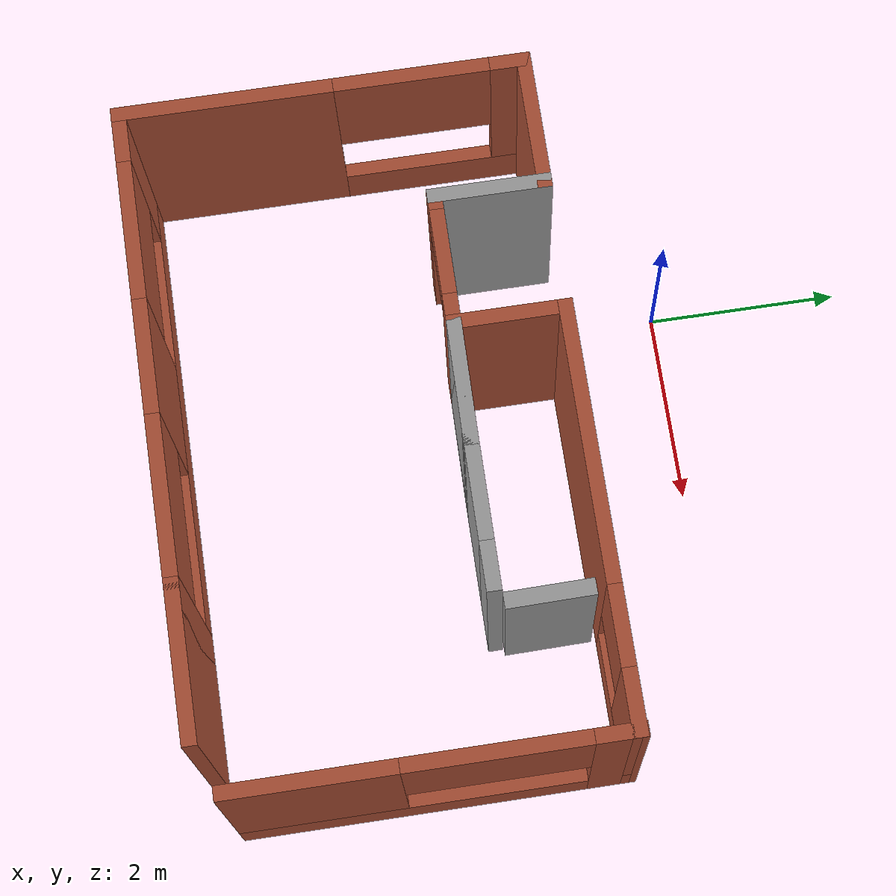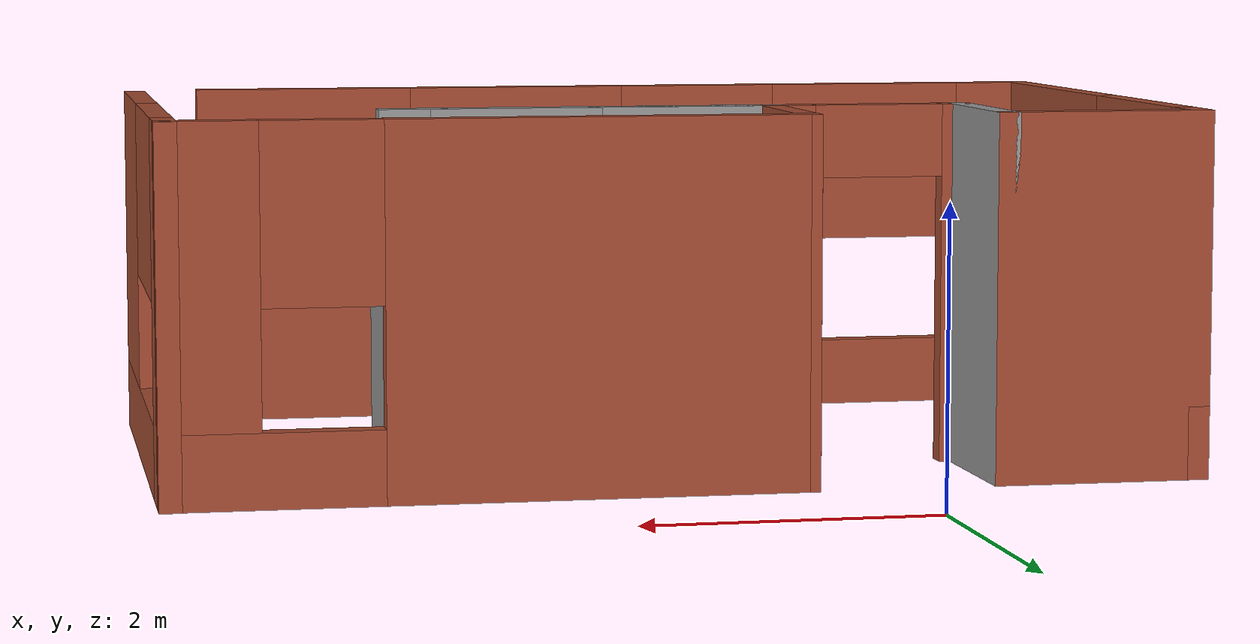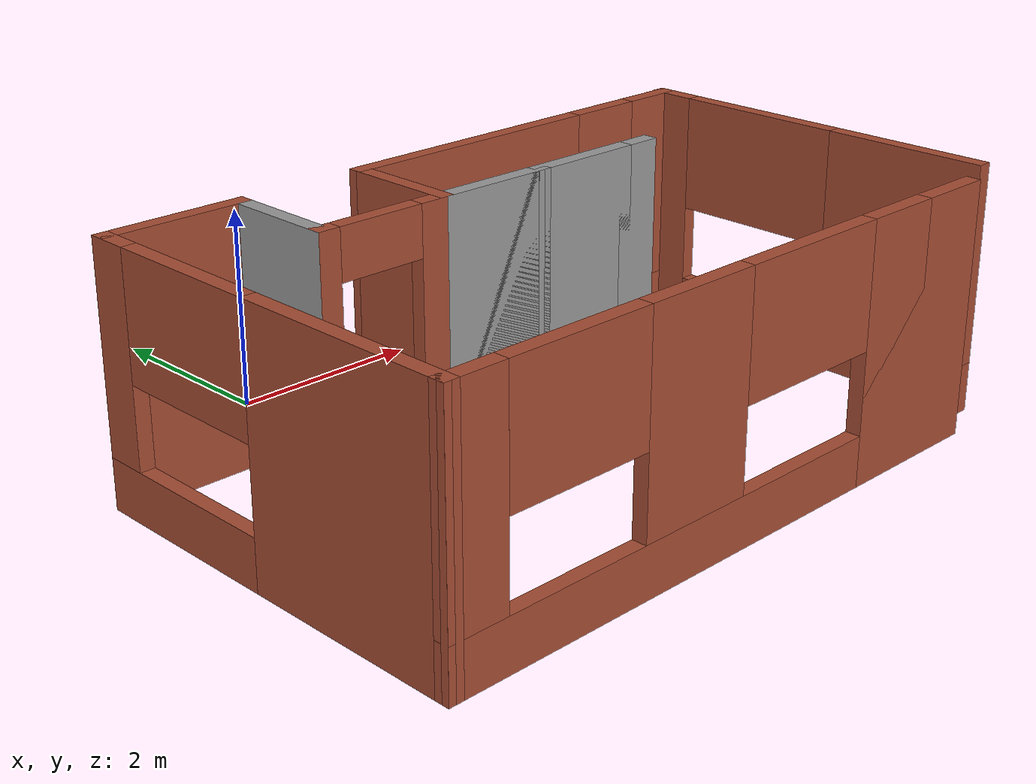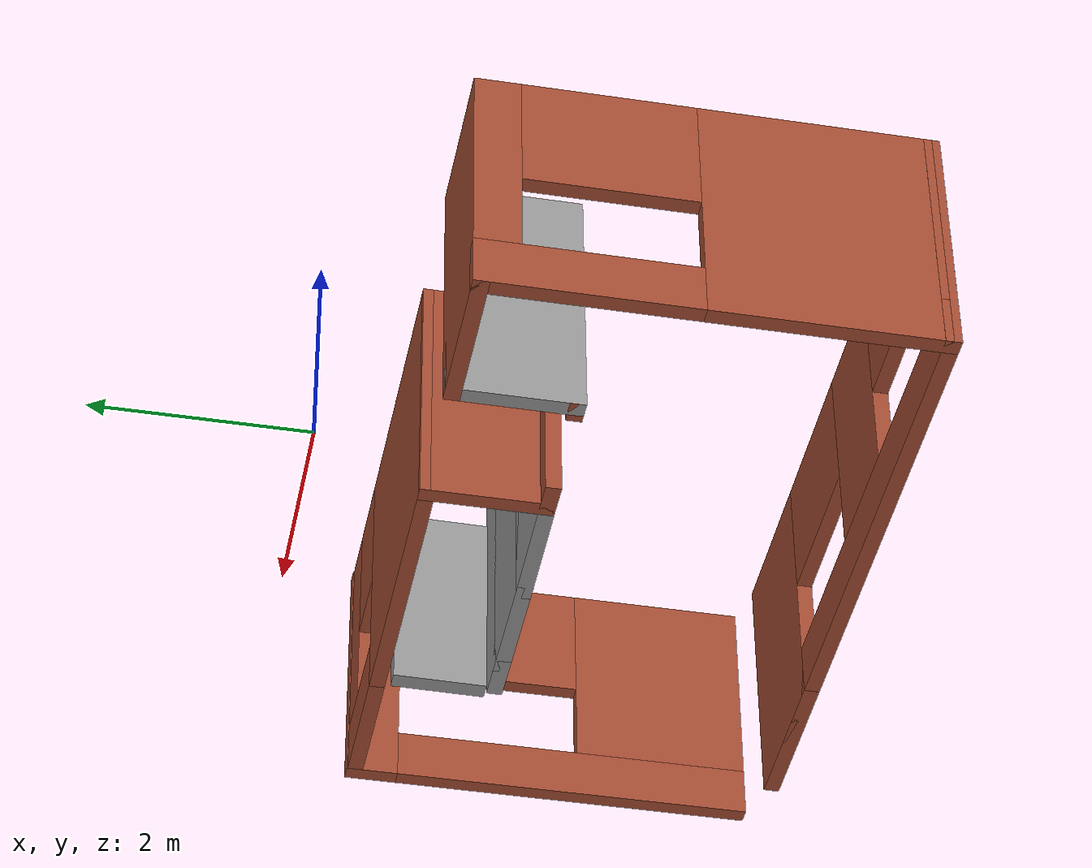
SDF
<?xml version='1.0'?>
<sdf version='1.6'>
  <model name='myBuilding'>
    <pose frame=''>1.38994 -3.15018 0 0 -0 0</pose>
    <link name='Door_2'>
      <collision name='Door_2_Collision'>
        <geometry>
          <box>
            <size>0.9 0.17 2</size>
          </box>
        </geometry>
        <pose frame=''>0 0 1 0 -0 0</pose>
      </collision>
      <visual name='Door_2_Visual'>
        <pose frame=''>0 0 1 0 -0 0</pose>
        <geometry>
          <box>
            <size>0.9 0.17 2</size>
          </box>
        </geometry>
        <material>
          <script>
            <uri>file://media/materials/scripts/gazebo.material</uri>
            <name>Gazebo/Grey</name>
          </script>
        </material>
      </visual>
      <pose frame=''>1.94006 1.47018 0 0 0 -1.5578</pose>
    </link>
    <link name='Wall_11'>
      <pose frame=''>-0.269936 -2.04482 0 0 0 -3.13688</pose>
      <visual name='Wall_11_Visual_0'>
        <pose frame=''>-2.45084 0 1.25 0 -0 0</pose>
        <geometry>
          <box>
            <size>1.6084 0.15 2.5</size>
          </box>
        </geometry>
        <material>
          <script>
            <uri>file://media/materials/scripts/gazebo.material</uri>
            <name>Gazebo/Bricks</name>
          </script>
          <ambient>1 1 1 1</ambient>
        </material>
        <meta>
          <layer>0</layer>
        </meta>
      </visual>
      <collision name='Wall_11_Collision_0'>
        <geometry>
          <box>
            <size>1.6084 0.15 2.5</size>
          </box>
        </geometry>
        <pose frame=''>-2.45084 0 1.25 0 -0 0</pose>
      </collision>
      <visual name='Wall_11_Visual_1'>
        <pose frame=''>-2.06079 0 1.25 0 -0 0</pose>
        <geometry>
          <box>
            <size>0.828302 0.15 2.5</size>
          </box>
        </geometry>
        <material>
          <script>
            <uri>file://media/materials/scripts/gazebo.material</uri>
            <name>Gazebo/Bricks</name>
          </script>
          <ambient>1 1 1 1</ambient>
        </material>
        <meta>
          <layer>0</layer>
        </meta>
      </visual>
      <collision name='Wall_11_Collision_1'>
        <geometry>
          <box>
            <size>0.828302 0.15 2.5</size>
          </box>
        </geometry>
        <pose frame=''>-2.06079 0 1.25 0 -0 0</pose>
      </collision>
      <visual name='Wall_11_Visual_2'>
        <pose frame=''>0.804199 0 0.25 0 -0 0</pose>
        <geometry>
          <box>
            <size>4.90167 0.15 0.5</size>
          </box>
        </geometry>
        <material>
          <script>
            <uri>file://media/materials/scripts/gazebo.material</uri>
            <name>Gazebo/Bricks</name>
          </script>
          <ambient>1 1 1 1</ambient>
        </material>
        <meta>
          <layer>0</layer>
        </meta>
      </visual>
      <collision name='Wall_11_Collision_2'>
        <geometry>
          <box>
            <size>4.90167 0.15 0.5</size>
          </box>
        </geometry>
        <pose frame=''>0.804199 0 0.25 0 -0 0</pose>
      </collision>
      <visual name='Wall_11_Visual_3'>
        <pose frame=''>0.804199 0 0.25 0 -0 0</pose>
        <geometry>
          <box>
            <size>4.90167 0.15 0.5</size>
          </box>
        </geometry>
        <material>
          <script>
            <uri>file://media/materials/scripts/gazebo.material</uri>
            <name>Gazebo/Bricks</name>
          </script>
          <ambient>1 1 1 1</ambient>
        </material>
        <meta>
          <layer>0</layer>
        </meta>
      </visual>
      <collision name='Wall_11_Collision_3'>
        <geometry>
          <box>
            <size>4.90167 0.15 0.5</size>
          </box>
        </geometry>
        <pose frame=''>0.804199 0 0.25 0 -0 0</pose>
      </collision>
      <visual name='Wall_11_Visual_4'>
        <pose frame=''>0.57927 0 1.5 0 -0 0</pose>
        <geometry>
          <box>
            <size>1.1925 0.15 2</size>
          </box>
        </geometry>
        <material>
          <script>
            <uri>file://media/materials/scripts/gazebo.material</uri>
            <name>Gazebo/Bricks</name>
          </script>
          <ambient>1 1 1 1</ambient>
        </material>
        <meta>
          <layer>0</layer>
        </meta>
      </visual>
      <collision name='Wall_11_Collision_4'>
        <geometry>
          <box>
            <size>1.1925 0.15 2</size>
          </box>
        </geometry>
        <pose frame=''>0.57927 0 1.5 0 -0 0</pose>
      </collision>
      <visual name='Wall_11_Visual_5'>
        <pose frame=''>2.95514 0 1.5 0 -0 0</pose>
        <geometry>
          <box>
            <size>0.599795 0.15 2</size>
          </box>
        </geometry>
        <material>
          <script>
            <uri>file://media/materials/scripts/gazebo.material</uri>
            <name>Gazebo/Bricks</name>
          </script>
          <ambient>1 1 1 1</ambient>
        </material>
        <meta>
          <layer>0</layer>
        </meta>
      </visual>
      <collision name='Wall_11_Collision_5'>
        <geometry>
          <box>
            <size>0.599795 0.15 2</size>
          </box>
        </geometry>
        <pose frame=''>2.95514 0 1.5 0 -0 0</pose>
      </collision>
      <visual name='Wall_11_Visual_6'>
        <pose frame=''>0.57927 0 1.5 0 -0 0</pose>
        <geometry>
          <box>
            <size>1.1925 0.15 2</size>
          </box>
        </geometry>
        <material>
          <script>
            <uri>file://media/materials/scripts/gazebo.material</uri>
            <name>Gazebo/Bricks</name>
          </script>
          <ambient>1 1 1 1</ambient>
        </material>
        <meta>
          <layer>0</layer>
        </meta>
      </visual>
      <collision name='Wall_11_Collision_6'>
        <geometry>
          <box>
            <size>1.1925 0.15 2</size>
          </box>
        </geometry>
        <pose frame=''>0.57927 0 1.5 0 -0 0</pose>
      </collision>
      <visual name='Wall_11_Visual_7'>
        <pose frame=''>2.95514 0 1.5 0 -0 0</pose>
        <geometry>
          <box>
            <size>0.599795 0.15 2</size>
          </box>
        </geometry>
        <material>
          <script>
            <uri>file://media/materials/scripts/gazebo.material</uri>
            <name>Gazebo/Bricks</name>
          </script>
          <ambient>1 1 1 1</ambient>
        </material>
        <meta>
          <layer>0</layer>
        </meta>
      </visual>
      <collision name='Wall_11_Collision_7'>
        <geometry>
          <box>
            <size>0.599795 0.15 2</size>
          </box>
        </geometry>
        <pose frame=''>2.95514 0 1.5 0 -0 0</pose>
      </collision>
      <visual name='Wall_11_Visual_8'>
        <pose frame=''>-0.831808 0 1.9 0 -0 0</pose>
        <geometry>
          <box>
            <size>1.62966 0.15 1.2</size>
          </box>
        </geometry>
        <material>
          <script>
            <uri>file://media/materials/scripts/gazebo.material</uri>
            <name>Gazebo/Bricks</name>
          </script>
          <ambient>1 1 1 1</ambient>
        </material>
        <meta>
          <layer>0</layer>
        </meta>
      </visual>
      <collision name='Wall_11_Collision_8'>
        <geometry>
          <box>
            <size>1.62966 0.15 1.2</size>
          </box>
        </geometry>
        <pose frame=''>-0.831808 0 1.9 0 -0 0</pose>
      </collision>
      <visual name='Wall_11_Visual_9'>
        <pose frame=''>-0.831808 0 1.9 0 -0 0</pose>
        <geometry>
          <box>
            <size>1.62966 0.15 1.2</size>
          </box>
        </geometry>
        <material>
          <script>
            <uri>file://media/materials/scripts/gazebo.material</uri>
            <name>Gazebo/Bricks</name>
          </script>
          <ambient>1 1 1 1</ambient>
        </material>
        <meta>
          <layer>0</layer>
        </meta>
      </visual>
      <collision name='Wall_11_Collision_9'>
        <geometry>
          <box>
            <size>1.62966 0.15 1.2</size>
          </box>
        </geometry>
        <pose frame=''>-0.831808 0 1.9 0 -0 0</pose>
      </collision>
      <visual name='Wall_11_Visual_10'>
        <pose frame=''>1.91538 0 1.9 0 -0 0</pose>
        <geometry>
          <box>
            <size>1.47972 0.15 1.2</size>
          </box>
        </geometry>
        <material>
          <script>
            <uri>file://media/materials/scripts/gazebo.material</uri>
            <name>Gazebo/Bricks</name>
          </script>
          <ambient>1 1 1 1</ambient>
        </material>
        <meta>
          <layer>0</layer>
        </meta>
      </visual>
      <collision name='Wall_11_Collision_10'>
        <geometry>
          <box>
            <size>1.47972 0.15 1.2</size>
          </box>
        </geometry>
        <pose frame=''>1.91538 0 1.9 0 -0 0</pose>
      </collision>
      <visual name='Wall_11_Visual_11'>
        <pose frame=''>1.91538 0 1.9 0 -0 0</pose>
        <geometry>
          <box>
            <size>1.47972 0.15 1.2</size>
          </box>
        </geometry>
        <material>
          <script>
            <uri>file://media/materials/scripts/gazebo.material</uri>
            <name>Gazebo/Bricks</name>
          </script>
          <ambient>1 1 1 1</ambient>
        </material>
        <meta>
          <layer>0</layer>
        </meta>
      </visual>
      <collision name='Wall_11_Collision_11'>
        <geometry>
          <box>
            <size>1.47972 0.15 1.2</size>
          </box>
        </geometry>
        <pose frame=''>1.91538 0 1.9 0 -0 0</pose>
      </collision>
    </link>
    <link name='Wall_12'>
      <pose frame=''>-3.44994 -0.009824 0 0 -0 1.5708</pose>
      <visual name='Wall_12_Visual_0'>
        <pose frame=''>-1.0078 0 1.25 0 -0 0</pose>
        <geometry>
          <box>
            <size>2.23439 0.15 2.5</size>
          </box>
        </geometry>
        <material>
          <script>
            <uri>file://media/materials/scripts/gazebo.material</uri>
            <name>Gazebo/Bricks</name>
          </script>
          <ambient>1 1 1 1</ambient>
        </material>
        <meta>
          <layer>0</layer>
        </meta>
      </visual>
      <collision name='Wall_12_Collision_0'>
        <geometry>
          <box>
            <size>2.23439 0.15 2.5</size>
          </box>
        </geometry>
        <pose frame=''>-1.0078 0 1.25 0 -0 0</pose>
      </collision>
      <visual name='Wall_12_Visual_1'>
        <pose frame=''>1.1172 0 0.25 0 -0 0</pose>
        <geometry>
          <box>
            <size>2.01561 0.15 0.5</size>
          </box>
        </geometry>
        <material>
          <script>
            <uri>file://media/materials/scripts/gazebo.material</uri>
            <name>Gazebo/Bricks</name>
          </script>
          <ambient>1 1 1 1</ambient>
        </material>
        <meta>
          <layer>0</layer>
        </meta>
      </visual>
      <collision name='Wall_12_Collision_1'>
        <geometry>
          <box>
            <size>2.01561 0.15 0.5</size>
          </box>
        </geometry>
        <pose frame=''>1.1172 0 0.25 0 -0 0</pose>
      </collision>
      <visual name='Wall_12_Visual_2'>
        <pose frame=''>1.9122 0 1.5 0 -0 0</pose>
        <geometry>
          <box>
            <size>0.425606 0.15 2</size>
          </box>
        </geometry>
        <material>
          <script>
            <uri>file://media/materials/scripts/gazebo.material</uri>
            <name>Gazebo/Bricks</name>
          </script>
          <ambient>1 1 1 1</ambient>
        </material>
        <meta>
          <layer>0</layer>
        </meta>
      </visual>
      <collision name='Wall_12_Collision_2'>
        <geometry>
          <box>
            <size>0.425606 0.15 2</size>
          </box>
        </geometry>
        <pose frame=''>1.9122 0 1.5 0 -0 0</pose>
      </collision>
      <visual name='Wall_12_Visual_3'>
        <pose frame=''>0.904394 0 1.9 0 -0 0</pose>
        <geometry>
          <box>
            <size>1.59 0.15 1.2</size>
          </box>
        </geometry>
        <material>
          <script>
            <uri>file://media/materials/scripts/gazebo.material</uri>
            <name>Gazebo/Bricks</name>
          </script>
          <ambient>1 1 1 1</ambient>
        </material>
        <meta>
          <layer>0</layer>
        </meta>
      </visual>
      <collision name='Wall_12_Collision_3'>
        <geometry>
          <box>
            <size>1.59 0.15 1.2</size>
          </box>
        </geometry>
        <pose frame=''>0.904394 0 1.9 0 -0 0</pose>
      </collision>
    </link>
    <link name='Wall_13'>
      <collision name='Wall_13_Collision'>
        <geometry>
          <box>
            <size>1.5 0.15 2.5</size>
          </box>
        </geometry>
        <pose frame=''>0 0 1.25 0 -0 0</pose>
      </collision>
      <visual name='Wall_13_Visual'>
        <pose frame=''>0 0 1.25 0 -0 0</pose>
        <geometry>
          <box>
            <size>1.5 0.15 2.5</size>
          </box>
        </geometry>
        <material>
          <script>
            <uri>file://media/materials/scripts/gazebo.material</uri>
            <name>Gazebo/Bricks</name>
          </script>
          <ambient>1 1 1 1</ambient>
        </material>
        <meta>
          <layer>0</layer>
        </meta>
      </visual>
      <pose frame=''>-2.77494 2.04018 0 0 -0 0</pose>
    </link>
    <link name='Wall_14'>
      <collision name='Wall_14_Collision'>
        <geometry>
          <box>
            <size>1.25 0.15 2.5</size>
          </box>
        </geometry>
        <pose frame=''>0 0 1.25 0 -0 0</pose>
      </collision>
      <visual name='Wall_14_Visual'>
        <pose frame=''>0 0 1.25 0 -0 0</pose>
        <geometry>
          <box>
            <size>1.25 0.15 2.5</size>
          </box>
        </geometry>
        <material>
          <script>
            <uri>file://media/materials/scripts/gazebo.material</uri>
            <name>Gazebo/Grey</name>
          </script>
          <ambient>1 1 1 1</ambient>
        </material>
        <meta>
          <layer>0</layer>
        </meta>
      </visual>
      <pose frame=''>-2.09994 1.49018 0 0 0 -1.5708</pose>
    </link>
    <link name='Wall_15'>
      <pose frame=''>-1.42494 0.940176 0 0 -0 0</pose>
      <visual name='Wall_15_Visual_0'>
        <pose frame=''>-0.6375 0 1.25 0 -0 0</pose>
        <geometry>
          <box>
            <size>0.225 0.15 2.5</size>
          </box>
        </geometry>
        <material>
          <script>
            <uri>file://media/materials/scripts/gazebo.material</uri>
            <name>Gazebo/Bricks</name>
          </script>
          <ambient>1 1 1 1</ambient>
        </material>
        <meta>
          <layer>0</layer>
        </meta>
      </visual>
      <collision name='Wall_15_Collision_0'>
        <geometry>
          <box>
            <size>0.225 0.15 2.5</size>
          </box>
        </geometry>
        <pose frame=''>-0.6375 0 1.25 0 -0 0</pose>
      </collision>
      <visual name='Wall_15_Visual_1'>
        <pose frame=''>0.5625 0 1.25 0 -0 0</pose>
        <geometry>
          <box>
            <size>0.375 0.15 2.5</size>
          </box>
        </geometry>
        <material>
          <script>
            <uri>file://media/materials/scripts/gazebo.material</uri>
            <name>Gazebo/Bricks</name>
          </script>
          <ambient>1 1 1 1</ambient>
        </material>
        <meta>
          <layer>0</layer>
        </meta>
      </visual>
      <collision name='Wall_15_Collision_1'>
        <geometry>
          <box>
            <size>0.375 0.15 2.5</size>
          </box>
        </geometry>
        <pose frame=''>0.5625 0 1.25 0 -0 0</pose>
      </collision>
      <visual name='Wall_15_Visual_2'>
        <pose frame=''>-0.075 0 2.25 0 -0 0</pose>
        <geometry>
          <box>
            <size>0.9 0.15 0.5</size>
          </box>
        </geometry>
        <material>
          <script>
            <uri>file://media/materials/scripts/gazebo.material</uri>
            <name>Gazebo/Bricks</name>
          </script>
          <ambient>1 1 1 1</ambient>
        </material>
        <meta>
          <layer>0</layer>
        </meta>
      </visual>
      <collision name='Wall_15_Collision_2'>
        <geometry>
          <box>
            <size>0.9 0.15 0.5</size>
          </box>
        </geometry>
        <pose frame=''>-0.075 0 2.25 0 -0 0</pose>
      </collision>
    </link>
    <link name='Wall_16'>
      <collision name='Wall_16_Collision'>
        <geometry>
          <box>
            <size>1.25 0.15 2.5</size>
          </box>
        </geometry>
        <pose frame=''>0 0 1.25 0 -0 0</pose>
      </collision>
      <visual name='Wall_16_Visual'>
        <pose frame=''>0 0 1.25 0 -0 0</pose>
        <geometry>
          <box>
            <size>1.25 0.15 2.5</size>
          </box>
        </geometry>
        <material>
          <script>
            <uri>file://media/materials/scripts/gazebo.material</uri>
            <name>Gazebo/Bricks</name>
          </script>
          <ambient>1 1 1 1</ambient>
        </material>
        <meta>
          <layer>0</layer>
        </meta>
      </visual>
      <pose frame=''>-0.749936 1.49018 0 0 -0 1.5708</pose>
    </link>
    <link name='Wall_17'>
      <pose frame=''>1.35006 2.04518 0 0 -0 0.002381</pose>
      <visual name='Wall_17_Visual_0'>
        <pose frame=''>-0.732439 0 1.25 0 -0 0</pose>
        <geometry>
          <box>
            <size>2.88523 0.15 2.5</size>
          </box>
        </geometry>
        <material>
          <script>
            <uri>file://media/materials/scripts/gazebo.material</uri>
            <name>Gazebo/Bricks</name>
          </script>
          <ambient>1 1 1 1</ambient>
        </material>
        <meta>
          <layer>0</layer>
        </meta>
      </visual>
      <collision name='Wall_17_Collision_0'>
        <geometry>
          <box>
            <size>2.88523 0.15 2.5</size>
          </box>
        </geometry>
        <pose frame=''>-0.732439 0 1.25 0 -0 0</pose>
      </collision>
      <visual name='Wall_17_Visual_1'>
        <pose frame=''>1.44261 0 0.25 0 -0 0</pose>
        <geometry>
          <box>
            <size>1.46488 0.15 0.5</size>
          </box>
        </geometry>
        <material>
          <script>
            <uri>file://media/materials/scripts/gazebo.material</uri>
            <name>Gazebo/Bricks</name>
          </script>
          <ambient>1 1 1 1</ambient>
        </material>
        <meta>
          <layer>0</layer>
        </meta>
      </visual>
      <collision name='Wall_17_Collision_1'>
        <geometry>
          <box>
            <size>1.46488 0.15 0.5</size>
          </box>
        </geometry>
        <pose frame=''>1.44261 0 0.25 0 -0 0</pose>
      </collision>
      <visual name='Wall_17_Visual_2'>
        <pose frame=''>1.84261 0 1.5 0 -0 0</pose>
        <geometry>
          <box>
            <size>0.664878 0.15 2</size>
          </box>
        </geometry>
        <material>
          <script>
            <uri>file://media/materials/scripts/gazebo.material</uri>
            <name>Gazebo/Bricks</name>
          </script>
          <ambient>1 1 1 1</ambient>
        </material>
        <meta>
          <layer>0</layer>
        </meta>
      </visual>
      <collision name='Wall_17_Collision_2'>
        <geometry>
          <box>
            <size>0.664878 0.15 2</size>
          </box>
        </geometry>
        <pose frame=''>1.84261 0 1.5 0 -0 0</pose>
      </collision>
      <visual name='Wall_17_Visual_3'>
        <pose frame=''>1.11017 0 1.9 0 -0 0</pose>
        <geometry>
          <box>
            <size>0.8 0.15 1.2</size>
          </box>
        </geometry>
        <material>
          <script>
            <uri>file://media/materials/scripts/gazebo.material</uri>
            <name>Gazebo/Bricks</name>
          </script>
          <ambient>1 1 1 1</ambient>
        </material>
        <meta>
          <layer>0</layer>
        </meta>
      </visual>
      <collision name='Wall_17_Collision_3'>
        <geometry>
          <box>
            <size>0.8 0.15 1.2</size>
          </box>
        </geometry>
        <pose frame=''>1.11017 0 1.9 0 -0 0</pose>
      </collision>
    </link>
    <link name='Wall_18'>
      <pose frame=''>3.45006 0.135176 0 0 0 -1.5708</pose>
      <visual name='Wall_18_Visual_0'>
        <pose frame=''>-1.74894 0 1.25 0 -0 0</pose>
        <geometry>
          <box>
            <size>0.502119 0.15 2.5</size>
          </box>
        </geometry>
        <material>
          <script>
            <uri>file://media/materials/scripts/gazebo.material</uri>
            <name>Gazebo/Bricks</name>
          </script>
          <ambient>1 1 1 1</ambient>
        </material>
        <meta>
          <layer>0</layer>
        </meta>
      </visual>
      <collision name='Wall_18_Collision_0'>
        <geometry>
          <box>
            <size>0.502119 0.15 2.5</size>
          </box>
        </geometry>
        <pose frame=''>-1.74894 0 1.25 0 -0 0</pose>
      </collision>
      <visual name='Wall_18_Visual_1'>
        <pose frame=''>0.25106 0 0.25 0 -0 0</pose>
        <geometry>
          <box>
            <size>3.49788 0.15 0.5</size>
          </box>
        </geometry>
        <material>
          <script>
            <uri>file://media/materials/scripts/gazebo.material</uri>
            <name>Gazebo/Bricks</name>
          </script>
          <ambient>1 1 1 1</ambient>
        </material>
        <meta>
          <layer>0</layer>
        </meta>
      </visual>
      <collision name='Wall_18_Collision_1'>
        <geometry>
          <box>
            <size>3.49788 0.15 0.5</size>
          </box>
        </geometry>
        <pose frame=''>0.25106 0 0.25 0 -0 0</pose>
      </collision>
      <visual name='Wall_18_Visual_2'>
        <pose frame=''>1.15106 0 1.5 0 -0 0</pose>
        <geometry>
          <box>
            <size>1.69788 0.15 2</size>
          </box>
        </geometry>
        <material>
          <script>
            <uri>file://media/materials/scripts/gazebo.material</uri>
            <name>Gazebo/Bricks</name>
          </script>
          <ambient>1 1 1 1</ambient>
        </material>
        <meta>
          <layer>0</layer>
        </meta>
      </visual>
      <collision name='Wall_18_Collision_2'>
        <geometry>
          <box>
            <size>1.69788 0.15 2</size>
          </box>
        </geometry>
        <pose frame=''>1.15106 0 1.5 0 -0 0</pose>
      </collision>
      <visual name='Wall_18_Visual_3'>
        <pose frame=''>-0.597881 0 1.9 0 -0 0</pose>
        <geometry>
          <box>
            <size>1.8 0.15 1.2</size>
          </box>
        </geometry>
        <material>
          <script>
            <uri>file://media/materials/scripts/gazebo.material</uri>
            <name>Gazebo/Bricks</name>
          </script>
          <ambient>1 1 1 1</ambient>
        </material>
        <meta>
          <layer>0</layer>
        </meta>
      </visual>
      <collision name='Wall_18_Collision_3'>
        <geometry>
          <box>
            <size>1.8 0.15 1.2</size>
          </box>
        </geometry>
        <pose frame=''>-0.597881 0 1.9 0 -0 0</pose>
      </collision>
    </link>
    <link name='Wall_20'>
      <collision name='Wall_20_Collision'>
        <geometry>
          <box>
            <size>1.34004 0.15 2.5</size>
          </box>
        </geometry>
        <pose frame=''>0 0 1.25 0 -0 0</pose>
      </collision>
      <visual name='Wall_20_Visual'>
        <pose frame=''>0 0 1.25 0 -0 0</pose>
        <geometry>
          <box>
            <size>1.34004 0.15 2.5</size>
          </box>
        </geometry>
        <material>
          <script>
            <uri>file://media/materials/scripts/gazebo.material</uri>
            <name>Gazebo/Grey</name>
          </script>
          <ambient>1 1 1 1</ambient>
        </material>
        <meta>
          <layer>0</layer>
        </meta>
      </visual>
      <pose frame=''>-0.154936 0.935177 0 0 -0 3.13319</pose>
    </link>
    <link name='Wall_21'>
      <collision name='Wall_21_Collision'>
        <geometry>
          <box>
            <size>1.34004 0.15 2.5</size>
          </box>
        </geometry>
        <pose frame=''>0 0 1.25 0 -0 0</pose>
      </collision>
      <visual name='Wall_21_Visual'>
        <pose frame=''>0 0 1.25 0 -0 0</pose>
        <geometry>
          <box>
            <size>1.34004 0.15 2.5</size>
          </box>
        </geometry>
        <material>
          <script>
            <uri>file://media/materials/scripts/gazebo.material</uri>
            <name>Gazebo/Grey</name>
          </script>
          <ambient>1 1 1 1</ambient>
        </material>
        <meta>
          <layer>0</layer>
        </meta>
      </visual>
      <pose frame=''>-0.154936 0.935177 0 0 0 -0.008403</pose>
    </link>
    <link name='Wall_22'>
      <collision name='Wall_22_Collision'>
        <geometry>
          <box>
            <size>1.25 0.15 2.5</size>
          </box>
        </geometry>
        <pose frame=''>0 0 1.25 0 -0 0</pose>
      </collision>
      <visual name='Wall_22_Visual'>
        <pose frame=''>0 0 1.25 0 -0 0</pose>
        <geometry>
          <box>
            <size>1.25 0.15 2.5</size>
          </box>
        </geometry>
        <material>
          <script>
            <uri>file://media/materials/scripts/gazebo.material</uri>
            <name>Gazebo/Grey</name>
          </script>
          <ambient>1 1 1 1</ambient>
        </material>
        <meta>
          <layer>0</layer>
        </meta>
      </visual>
      <pose frame=''>0.990064 0.930176 0 0 -0 0</pose>
    </link>
    <link name='Wall_23'>
      <collision name='Wall_23_Collision'>
        <geometry>
          <box>
            <size>0.5 0.15 2.5</size>
          </box>
        </geometry>
        <pose frame=''>0 0 1.25 0 -0 0</pose>
      </collision>
      <visual name='Wall_23_Visual'>
        <pose frame=''>0 0 1.25 0 -0 0</pose>
        <geometry>
          <box>
            <size>0.5 0.15 2.5</size>
          </box>
        </geometry>
        <material>
          <script>
            <uri>file://media/materials/scripts/gazebo.material</uri>
            <name>Gazebo/Grey</name>
          </script>
          <ambient>1 1 1 1</ambient>
        </material>
        <meta>
          <layer>0</layer>
        </meta>
      </visual>
      <pose frame=''>1.71506 0.930176 0 0 -0 0</pose>
    </link>
    <static>1</static>
  </model>
</sdf>
